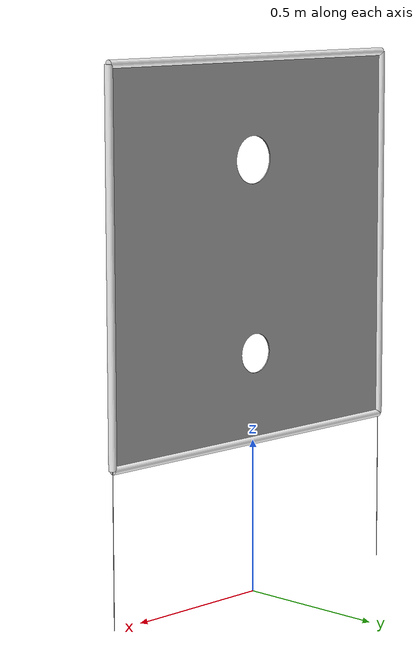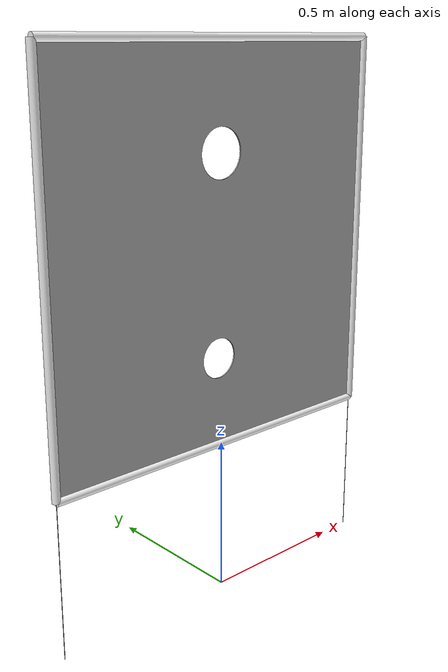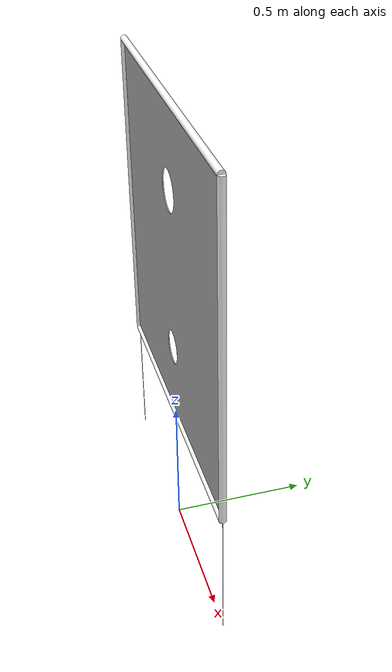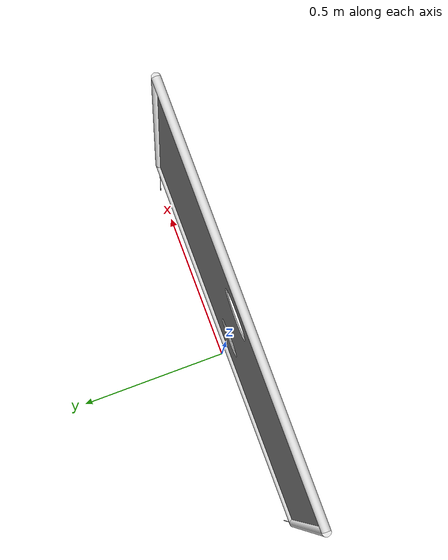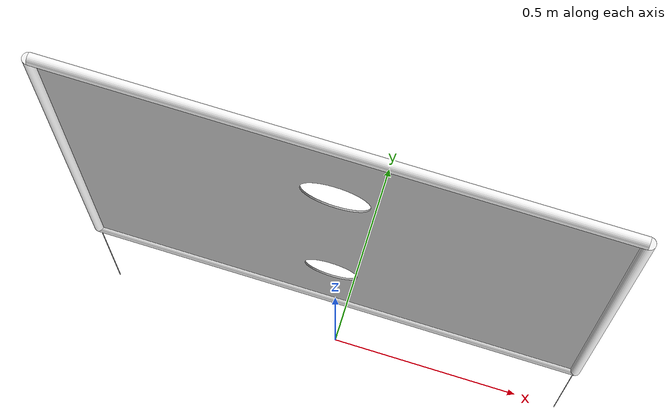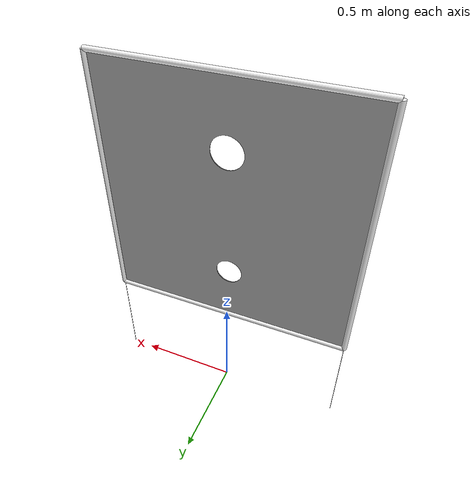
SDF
<?xml version="1.0"?>
<sdf version="1.11">  <model name="robosub23_torpedo_panel_v1">
    <static>1</static>

    <include>
      <uri>model://robosub23_torpedo_panel</uri>
    </include>

    <link name="box_buoy">
      <visual name="box_buoy_vis">
        <pose>0 0 1.1096 0 0 0</pose>
        <geometry>
          <mesh>
            <uri>model://robosub23_torpedo_panel_v1/v1.dae</uri>
          </mesh>
        </geometry>
      </visual>
      <collision name="box_buoy_collide">
        <pose>0 0 1.1096 0 0 0</pose>
        <geometry>
          <mesh>
            <uri>model://robosub23_torpedo_panel_v1/v1.dae</uri>
          </mesh>
        </geometry>
      </collision>
    </link>
  </model>
</sdf>

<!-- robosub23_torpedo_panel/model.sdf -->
<sdf version="1.11">  <model name="robosub23_torpedo_panel">
    <static>1</static>

    <link name="buoy_top">
      <pose>0 0 1.7192 0 1.5707 0</pose>
      <visual name="buoy_top_vis">
        <geometry>
          <cylinder>
            <radius>0.0127</radius>
            <length>1.2192</length>
          </cylinder>
        </geometry>
        <material>
          <ambient>1 1 1 1</ambient>
          <diffuse>1 1 1 1</diffuse>
          <specular>0.1 0.1 0.1 1</specular>
        </material>
      </visual>
      <collision name="buoy_top_collide">
        <geometry>
          <cylinder>
            <radius>0.0127</radius>
            <length>1.2192</length>
          </cylinder>
        </geometry>
      </collision>
    </link>

    <link name="buoy_bottom">
      <pose>0 0 0.5 0 1.5707 0</pose>
      <visual name="buoy_bottom_vis">
        <geometry>
          <cylinder>
            <radius>0.0127</radius>
            <length>1.2192</length>
          </cylinder>
        </geometry>
        <material>
          <ambient>1 1 1 1</ambient>
          <diffuse>1 1 1 1</diffuse>
          <specular>0.1 0.1 0.1 1</specular>
        </material>
      </visual>
      <collision name="buoy_bottom_collide">
        <geometry>
          <cylinder>
            <radius>0.0127</radius>
            <length>1.2192</length>
          </cylinder>
        </geometry>
      </collision>
    </link>

    <link name="buoy_side_left">
      <pose>-0.6096 0 1.1096 0 0 0</pose>
      <visual name="buoy_side_left_vis">
        <geometry>
          <cylinder>
            <radius>0.0127</radius>
            <length>1.2192</length>
          </cylinder>
        </geometry>
        <material>
          <ambient>1 1 1 1</ambient>
          <diffuse>1 1 1 1</diffuse>
          <specular>0.1 0.1 0.1 1</specular>
        </material>
      </visual>
      <collision name="buoy_side_left_collide">
        <geometry>
          <cylinder>
            <radius>0.0127</radius>
            <length>1.2192</length>
          </cylinder>
        </geometry>
      </collision>
    </link>

    <link name="buoy_side_right">
      <pose>0.6096 0 1.1096 0 0 0</pose>
      <visual name="buoy_side_right_vis">
        <geometry>
          <cylinder>
            <radius>0.0127</radius>
            <length>1.2192</length>
          </cylinder>
        </geometry>
        <material>
          <ambient>1 1 1 1</ambient>
          <diffuse>1 1 1 1</diffuse>
          <specular>0.1 0.1 0.1 1</specular>
        </material>
      </visual>
      <collision name="buoy_side_right_collide">
        <geometry>
          <cylinder>
            <radius>0.0127</radius>
            <length>1.2192</length>
          </cylinder>
        </geometry>
      </collision>
    </link>

    <link name="buoy_mooring_left">
      <pose>-0.6096 0 0.25 0 0 0</pose>
      <visual name="buoy_mooring_left_vis">
        <geometry>
          <cylinder>
            <radius>0.001</radius>
            <length>0.5</length>
          </cylinder>
        </geometry>
        <material>
          <ambient>0 0 0 1</ambient>
          <diffuse>0 0 0 1</diffuse>
          <specular>0.1 0.1 0.1 1</specular>
        </material>
      </visual>
    </link>

    <link name="buoy_mooring_right">
      <pose>0.6096 0 0.25 0 0 0</pose>
      <visual name="buoy_mooring_right_vis">
        <geometry>
          <cylinder>
            <radius>0.001</radius>
            <length>0.5</length>
          </cylinder>
        </geometry>
        <material>
          <ambient>0 0 0 1</ambient>
          <diffuse>0 0 0 1</diffuse>
          <specular>0.1 0.1 0.1 1</specular>
        </material>
      </visual>
    </link>
  </model>
</sdf>
